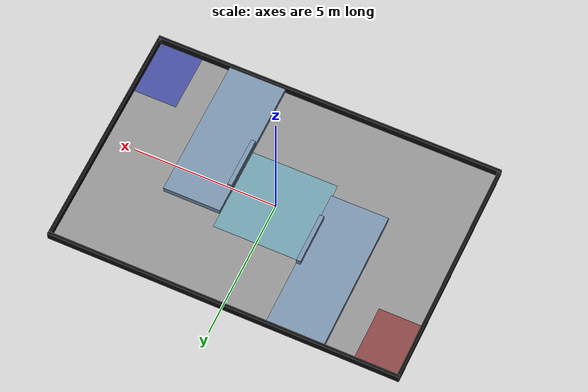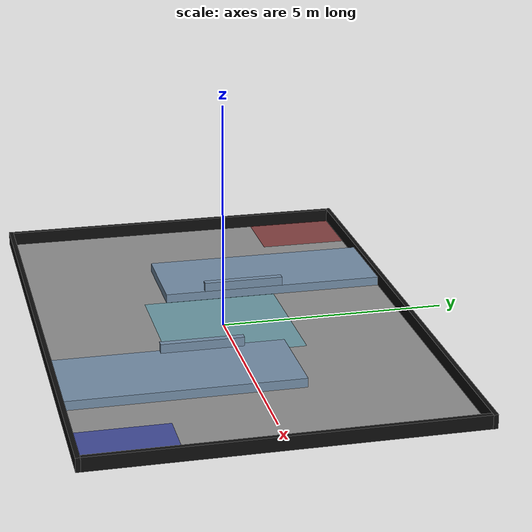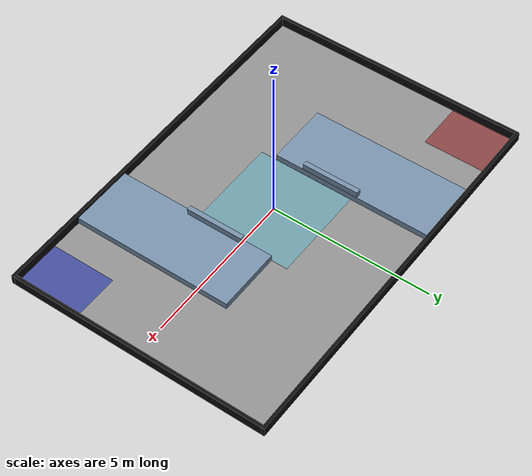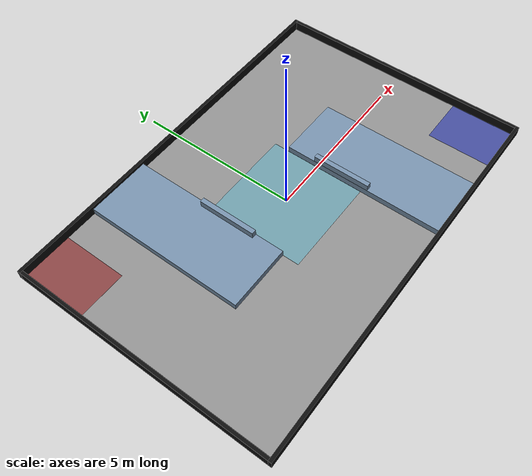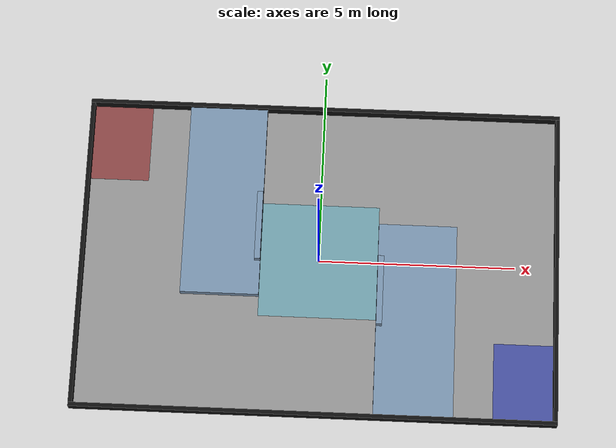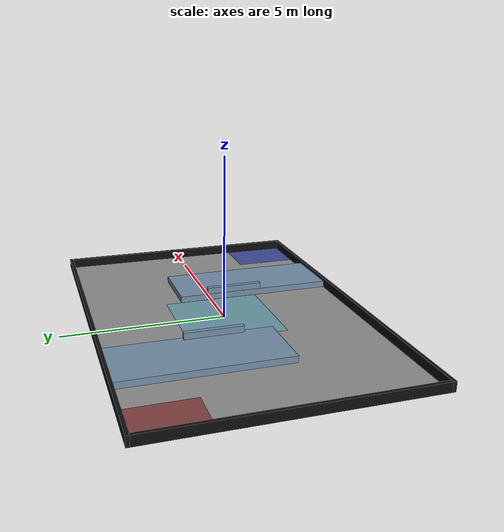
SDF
<?xml version='1.0' encoding='utf-8'?>
<sdf version="1.7">
  <world name="rmul_2026_3v3">
    <gravity>0 0 -9.8</gravity>
    <physics name="default_physics" type="ode">
      <max_step_size>0.001</max_step_size>
      <real_time_update_rate>1000.0</real_time_update_rate>
    </physics>
    <scene>
      <ambient>0.55 0.55 0.55 1</ambient>
      <background>0.75 0.80 0.90 1</background>
      <shadows>true</shadows>
    </scene>
    <light name="sun" type="directional">
      <cast_shadows>true</cast_shadows>
      <pose>0 0 10 0 0 0</pose>
      <diffuse>0.8 0.8 0.8 1</diffuse>
      <specular>0.2 0.2 0.2 1</specular>
      <direction>-0.5 0.1 -0.9</direction>
    </light>
    <model name="rmul_2026_3v3_field">
      <static>true</static>
      <link name="floor">
        <pose>0 0 -0.0015 0 0 0</pose>
        <collision name="collision">
          <geometry>
            <box>
              <size>12 8 0.003</size>
            </box>
          </geometry>
        </collision>
        <visual name="visual">
          <geometry>
            <box>
              <size>12 8 0.003</size>
            </box>
          </geometry>
          <cast_shadows>true</cast_shadows>
          <material>
            <ambient>0.55 0.55 0.55 1</ambient>
            <diffuse>0.55 0.55 0.55 1</diffuse>
          </material>
        </visual>
      </link>
      <link name="red_supply_zone">
        <pose>-5.25 3 0.0015 0 0 0</pose>
        <visual name="visual">
          <geometry>
            <box>
              <size>1.5 2 0.003</size>
            </box>
          </geometry>
          <cast_shadows>false</cast_shadows>
          <material>
            <ambient>0.55 0.2 0.2 0.75</ambient>
            <diffuse>0.55 0.2 0.2 0.75</diffuse>
          </material>
          <transparency>0.25</transparency>
        </visual>
      </link>
      <link name="blue_supply_zone">
        <pose>5.25 -3 0.0015 0 0 0</pose>
        <visual name="visual">
          <geometry>
            <box>
              <size>1.5 2 0.003</size>
            </box>
          </geometry>
          <cast_shadows>false</cast_shadows>
          <material>
            <ambient>0.2 0.25 0.65 0.75</ambient>
            <diffuse>0.2 0.25 0.65 0.75</diffuse>
          </material>
          <transparency>0.25</transparency>
        </visual>
      </link>
      <link name="control_zone">
        <pose>0 0 0.0015 0 0 0</pose>
        <visual name="visual">
          <geometry>
            <box>
              <size>3 3 0.003</size>
            </box>
          </geometry>
          <cast_shadows>false</cast_shadows>
          <material>
            <ambient>0.3 0.7 0.8 0.45</ambient>
            <diffuse>0.3 0.7 0.8 0.45</diffuse>
          </material>
          <transparency>0.55</transparency>
        </visual>
      </link>
      <link name="red_highland_main">
        <pose>-2.5 1.5 0.1 0 0 0</pose>
        <collision name="collision">
          <geometry>
            <box>
              <size>2 5 0.2</size>
            </box>
          </geometry>
        </collision>
        <visual name="visual">
          <geometry>
            <box>
              <size>2 5 0.2</size>
            </box>
          </geometry>
          <cast_shadows>true</cast_shadows>
          <material>
            <ambient>0.45 0.55 0.65 1</ambient>
            <diffuse>0.45 0.55 0.65 1</diffuse>
          </material>
        </visual>
      </link>
      <link name="blue_highland_main">
        <pose>2.5 -1.5 0.1 0 0 0</pose>
        <collision name="collision">
          <geometry>
            <box>
              <size>2 5 0.2</size>
            </box>
          </geometry>
        </collision>
        <visual name="visual">
          <geometry>
            <box>
              <size>2 5 0.2</size>
            </box>
          </geometry>
          <cast_shadows>true</cast_shadows>
          <material>
            <ambient>0.45 0.55 0.65 1</ambient>
            <diffuse>0.45 0.55 0.65 1</diffuse>
          </material>
        </visual>
      </link>
      <link name="red_highland_guard">
        <pose>-1.575 0.8 0.3 0 0 0</pose>
        <collision name="collision">
          <geometry>
            <box>
              <size>0.15 1.8 0.2</size>
            </box>
          </geometry>
        </collision>
        <visual name="visual">
          <geometry>
            <box>
              <size>0.15 1.8 0.2</size>
            </box>
          </geometry>
          <cast_shadows>true</cast_shadows>
          <material>
            <ambient>0.45 0.55 0.65 1</ambient>
            <diffuse>0.45 0.55 0.65 1</diffuse>
          </material>
        </visual>
      </link>
      <link name="blue_highland_guard">
        <pose>1.575 -0.8 0.3 0 0 0</pose>
        <collision name="collision">
          <geometry>
            <box>
              <size>0.15 1.8 0.2</size>
            </box>
          </geometry>
        </collision>
        <visual name="visual">
          <geometry>
            <box>
              <size>0.15 1.8 0.2</size>
            </box>
          </geometry>
          <cast_shadows>true</cast_shadows>
          <material>
            <ambient>0.45 0.55 0.65 1</ambient>
            <diffuse>0.45 0.55 0.65 1</diffuse>
          </material>
        </visual>
      </link>
      <link name="north_wall">
        <pose>0 4.05 0.15 0 0 0</pose>
        <collision name="collision">
          <geometry>
            <box>
              <size>12.2 0.1 0.3</size>
            </box>
          </geometry>
        </collision>
        <visual name="visual">
          <geometry>
            <box>
              <size>12.2 0.1 0.3</size>
            </box>
          </geometry>
          <cast_shadows>true</cast_shadows>
          <material>
            <ambient>0.05 0.05 0.05 1</ambient>
            <diffuse>0.05 0.05 0.05 1</diffuse>
          </material>
        </visual>
      </link>
      <link name="south_wall">
        <pose>0 -4.05 0.15 0 0 0</pose>
        <collision name="collision">
          <geometry>
            <box>
              <size>12.2 0.1 0.3</size>
            </box>
          </geometry>
        </collision>
        <visual name="visual">
          <geometry>
            <box>
              <size>12.2 0.1 0.3</size>
            </box>
          </geometry>
          <cast_shadows>true</cast_shadows>
          <material>
            <ambient>0.05 0.05 0.05 1</ambient>
            <diffuse>0.05 0.05 0.05 1</diffuse>
          </material>
        </visual>
      </link>
      <link name="east_wall">
        <pose>6.05 0 0.15 0 0 0</pose>
        <collision name="collision">
          <geometry>
            <box>
              <size>0.1 8 0.3</size>
            </box>
          </geometry>
        </collision>
        <visual name="visual">
          <geometry>
            <box>
              <size>0.1 8 0.3</size>
            </box>
          </geometry>
          <cast_shadows>true</cast_shadows>
          <material>
            <ambient>0.05 0.05 0.05 1</ambient>
            <diffuse>0.05 0.05 0.05 1</diffuse>
          </material>
        </visual>
      </link>
      <link name="west_wall">
        <pose>-6.05 0 0.15 0 0 0</pose>
        <collision name="collision">
          <geometry>
            <box>
              <size>0.1 8 0.3</size>
            </box>
          </geometry>
        </collision>
        <visual name="visual">
          <geometry>
            <box>
              <size>0.1 8 0.3</size>
            </box>
          </geometry>
          <cast_shadows>true</cast_shadows>
          <material>
            <ambient>0.05 0.05 0.05 1</ambient>
            <diffuse>0.05 0.05 0.05 1</diffuse>
          </material>
        </visual>
      </link>
    </model>
    <gui fullscreen="0">
      <camera name="overview_camera">
        <pose>10 -12 11 0 0.55 2.25</pose>
        <view_controller>orbit</view_controller>
      </camera>
    </gui>
  </world>
</sdf>
